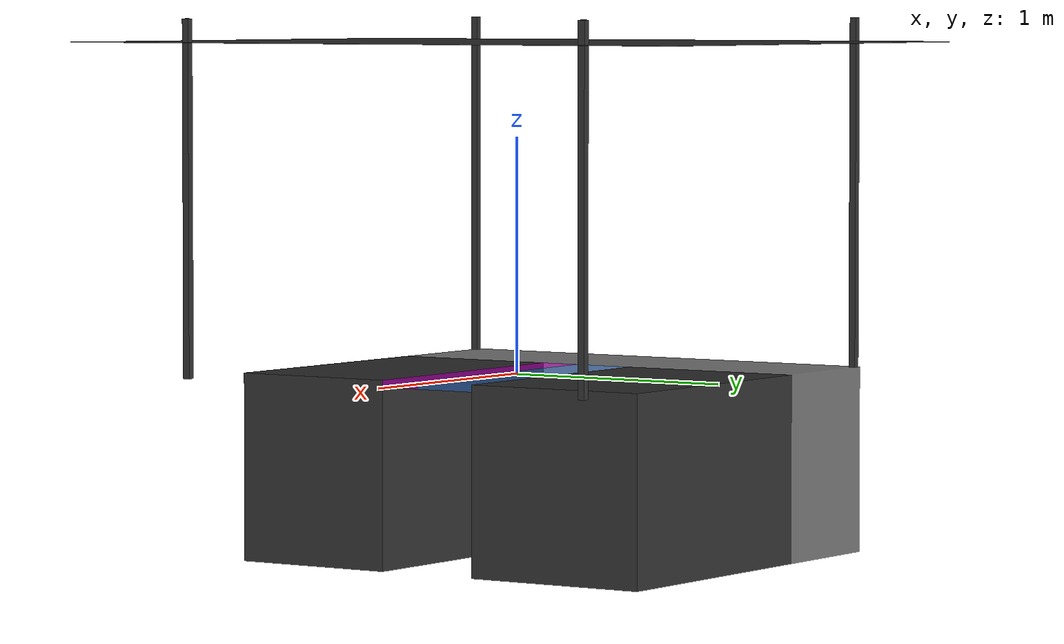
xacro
<?xml version="1.0"?>
<robot
    xmlns:xacro="http://ros.org/wiki/xacro" name="table">

    <link name="bar1">
       <visual>
         <origin xyz="0 0 0" rpy="0 0 0" />
         <geometry>
           <box size="0.03 0.03 1.5" />
         </geometry>
         <material name="bar1">
           <color rgba="0.192 0.192 0.192 1.0"/>
         </material>
       </visual>

       <collision>
         <origin xyz="0 0 0" rpy="0 0 0"/>
         <geometry>
           <box size="0.09 0.09 1.5"/>
         </geometry>
       </collision>
     </link>

     <link name="bar2">
       <visual>
         <origin xyz="0 0 0" rpy="0 0 0" />
         <geometry>
           <box size="0.03 0.03 1.5" />
         </geometry>
         <material name="bar2">
           <color rgba="0.192 0.192 0.192 1.0"/>
         </material>
       </visual>

       <collision>
         <origin xyz="0 0 0" rpy="0 0 0"/>
         <geometry>
           <box size="0.09 0.09 1.5"/>
         </geometry>
       </collision>
     </link>

     <link name="bar3">
       <visual>
         <origin xyz="0 0 0" rpy="0 0 0" />
         <geometry>
           <box size="0.03 0.03 1.5" />
         </geometry>
         <material name="bar3">
           <color rgba="0.192 0.192 0.192 1.0"/>
         </material>
       </visual>

       <collision>
         <origin xyz="0 0 0" rpy="0 0 0"/>
         <geometry>
           <box size="0.09 0.09 1.5"/>
         </geometry>
       </collision>
     </link>

     <link name="bar4">
       <visual>
         <origin xyz="0 0 0" rpy="0 0 0" />
         <geometry>
           <box size="0.03 0.03 1.5" />
         </geometry>
         <material name="bar4">
           <color rgba="0.192 0.192 0.192 1.0"/>
         </material>
       </visual>

       <collision>
         <origin xyz="0 0 0" rpy="0 0 0"/>
         <geometry>
           <box size="0.09 0.09 1.5"/>
         </geometry>
       </collision>
     </link>

     <link name="table">
       <visual>
         <origin xyz="-0.885  0 -0.4" rpy="0 0 0" />
         <geometry>
           <box size="0.57 1.98 0.8" />
         </geometry>
         <material name="table">
           <color rgba="0.192 0.192 0.192 0.7"/>
         </material>
       </visual>

       <collision>
         <origin xyz="-0.885 0 -0.4" rpy="0 0 0"/>
         <geometry>
           <box size="0.57 1.98 0.8"/>
         </geometry>
       </collision>
     </link>

     <link name="table_station2">
       <visual>
         <origin xyz="0 -0.18 -0.015" rpy="0 0 0" />
         <geometry>
           <box size="1.2 0.18 0.03" />
         </geometry>
         <material name="color1">
           <color rgba="0.7 0.01 0.7 0.8"/>
         </material>
       </visual>

       <collision>
         <origin xyz="0 -0.18 -0.015" rpy="0 0 0"/>
         <geometry>
           <box size="1.2 0.18 0.03"/>
         </geometry>
       </collision>
     </link>

     <link name="table_station1">
       <visual>
         <origin xyz="0 0.045 -0.015" rpy="0 0 0" />
         <geometry>
           <box size="1.2 0.27 0.03" />
         </geometry>
         <material name="color2">
           <color rgba="0.2 0.4 0.7 0.8"/>
         </material>
       </visual>

       <collision>
         <origin xyz="0 0.045 -0.015" rpy="0 0 0"/>
         <geometry>
           <box size="1.2 0.27 0.03"/>
         </geometry>
       </collision>
     </link>

     <link name="table_link1">
       <visual>
         <origin xyz="0 -0.630 -0.4" rpy="0 0 0" />
         <geometry>
           <box size="1.2 0.72 0.8" />
         </geometry>
         <material name="table">
           <color rgba="0.192 0.192 0.192 1.0"/>
         </material>
       </visual>

       <collision>
         <origin xyz="0 -0.630 -0.4" rpy="0 0 0"/>
         <geometry>
           <box size="1.2 0.72 0.8"/>
         </geometry>
       </collision>
     </link>

     <link name="table_link2">
       <visual>
         <origin xyz="0 0.585 -0.4" rpy="0 0 0" />
         <geometry>
           <box size="1.2 0.81 0.8" />
         </geometry>
         <material name="table">
           <color rgba="0.192 0.192 0.192 1.0"/>
         </material>
       </visual>

       <collision>
         <origin xyz="0 0.585 -0.4" rpy="0 0 0"/>
         <geometry>
           <box size="1.2 0.81 0.8"/>
         </geometry>
       </collision>
     </link>

    <link name="ceiling">
      <visual>
         <origin xyz="0 0 0.0005" rpy="0 0 0" />
         <geometry>
           <box size="2.3 3 0.001" />
         </geometry>
         <material name="ceiling">
           <color rgba="0.192 0.192 0.192 1.0"/>
         </material>
       </visual>

      <collision>
         <origin xyz="0 0 0.0005" rpy="0 0 0"/>
         <geometry>
           <box size="2.3 3 0.001"/>
         </geometry>
      </collision>
     </link>

    <joint name="table_bar1" type="fixed">
      <parent link="table" />
      <child link="bar1" />
      <origin xyz="0.990 0.985 0.75" rpy="0.0 0.0 0" />
    </joint>

    <joint name="table_bar2" type="fixed">
      <parent link="table" />
      <child link="bar2" />
      <origin xyz="-1.125 0.985 0.75" rpy="0.0 0.0 0" />
    </joint>

    <joint name="table_bar3" type="fixed">
      <parent link="table" />
      <child link="bar3" />
      <origin xyz="0.990 -0.985 0.75" rpy="0.0 0.0 0" />
    </joint>

    <joint name="table_bar4" type="fixed">
      <parent link="table" />
      <child link="bar4" />
      <origin xyz="-1.125 -0.985 0.75" rpy="0.0 0.0 0" />
    </joint>

    <joint name="table_ceiling" type="fixed">
      <parent link="table" />
      <child link="ceiling" />
      <origin xyz="0 0 1.4" rpy="0.0 0.0 0" />
    </joint>

    <joint name="table_p_joint2" type="prismatic">
      <parent link="table" />
      <child link="table_station2" />
      <origin xyz="0 0 0" rpy="0.0 0.0 0" />
      <axis xyz="0 0 1"/>
      <limit effort="30" velocity="1.0" lower="-1.65" upper="0.084" />
    </joint>

    <joint name="table_p_joint1" type="prismatic">
      <parent link="table" />
      <child link="table_station1" />
      <origin xyz="0 0 0" rpy="0.0 0.0 0" />
      <axis xyz="0 0 1"/>
      <limit effort="30" velocity="1.0" lower="-0.028" upper="0.375" />
    </joint>

    <joint name="table_joint1" type="fixed">
      <parent link="table" />
      <child link="table_link1" />
      <origin xyz="0 0 0" rpy="0.0 0.0 0" />
    </joint>

    <joint name="table_joint2" type="fixed">
      <parent link="table" />
      <child link="table_link2" />
      <origin xyz="0 0 0" rpy="0.0 0.0 0" />
    </joint>

</robot>
